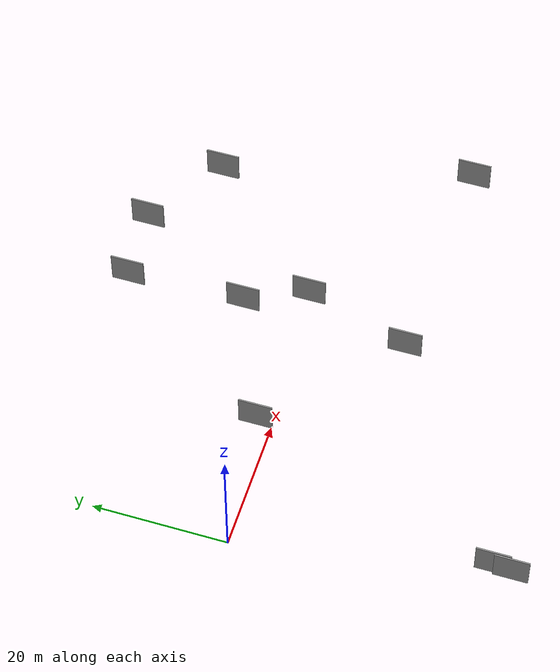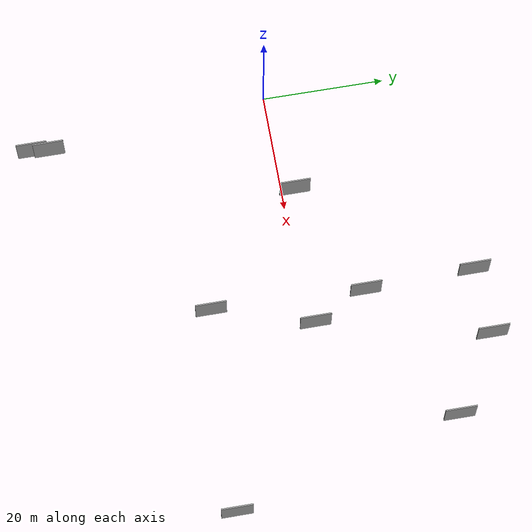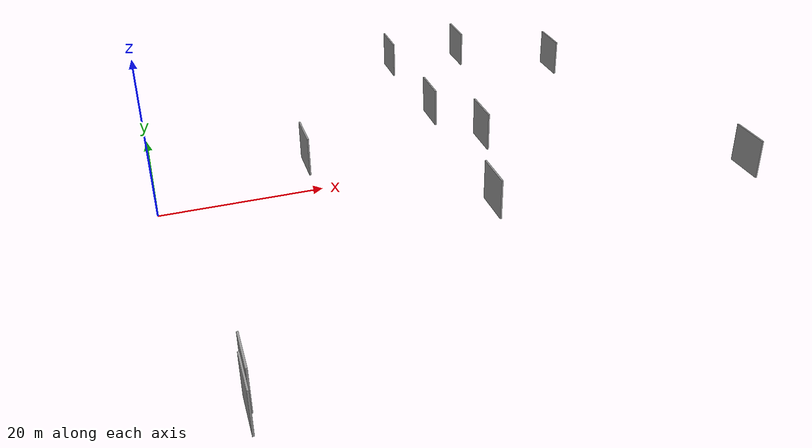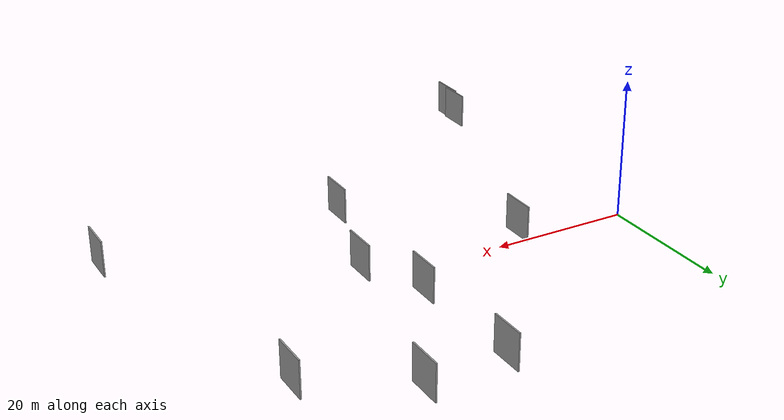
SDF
<sdf version="1.6">
 <world name="default">
  <scene>
   <sky><clouds><speed>12</speed></clouds></sky>
   <ambient>0.4 0.4 0.4 1</ambient>
   <background>0.7 0.7 0.7 1</background>
   <shadows>1</shadows>
  </scene>
  <gravity>0 0 -9.8066</gravity>
  <magnetic_field>6e-06 2.3e-05 -4.2e-05</magnetic_field>
  <physics default="0" name="default_physics" type="ode">
   <ode>
    <solver>
     <type>quick</type>
     <iters>10</iters>
     <sor>1.0</sor>
     <use_dynamic_moi_rescaling>0</use_dynamic_moi_rescaling>
    </solver>
    <constraints>
     <cfm>0</cfm>
     <erp>0.2</erp>
     <contact_max_correcting_vel>100</contact_max_correcting_vel>
     <contact_surface_layer>0.001</contact_surface_layer>
    </constraints>
   </ode>
   <max_step_size>0.004</max_step_size>
   <real_time_factor>1</real_time_factor>
   <real_time_update_rate>250</real_time_update_rate>
  </physics>
  <light name="sun" type="directional">
   <pose>0 0 10 0 0 0</pose>
   <diffuse>0.8 0.8 0.8 1</diffuse>
   <specular>0.2 0.2 0.2 1</specular>
   <attenuation>
    <range>1000</range>
    <constant>0.9</constant>
    <linear>0.01</linear>
    <quadratic>0.001</quadratic>
   </attenuation>
   <direction>-0.5 0.1 -0.9</direction>
  </light>
  <model name="grey_wall_1">
   <static>1</static>
   <pose>69.9967 -16.2536 2.5 0.000000 0.000000 1.570796</pose>
   <link name="link">
    <pose>0 0 2.50 0 0 0</pose>
    <collision name="collision"><geometry><box><size>5.00 0.2 5.00</size></box></geometry></collision>
    <visual name="visual">
     <cast_shadows>0</cast_shadows>
     <geometry><box><size>5.00 0.2 5.00</size></box></geometry>
     <material>
      <script>
       <uri>model://grey_wall/materials/scripts</uri>
       <uri>model://grey_wall/materials/textures</uri>
       <name>vrc/grey_wall</name>
      </script>
     </material>
    </visual>
   </link>
  </model>
  <model name="grey_wall_2">
   <static>1</static>
   <pose>37.0818 27.5900 2.5 0.000000 0.000000 1.570796</pose>
   <link name="link">
    <pose>0 0 2.50 0 0 0</pose>
    <collision name="collision"><geometry><box><size>5.00 0.2 5.00</size></box></geometry></collision>
    <visual name="visual">
     <cast_shadows>0</cast_shadows>
     <geometry><box><size>5.00 0.2 5.00</size></box></geometry>
     <material>
      <script>
       <uri>model://grey_wall/materials/scripts</uri>
       <uri>model://grey_wall/materials/textures</uri>
       <name>vrc/grey_wall</name>
      </script>
     </material>
    </visual>
   </link>
  </model>
  <model name="grey_wall_3">
   <static>1</static>
   <pose>41.6607 1.1178 2.5 0.000000 0.000000 1.570796</pose>
   <link name="link">
    <pose>0 0 2.50 0 0 0</pose>
    <collision name="collision"><geometry><box><size>5.00 0.2 5.00</size></box></geometry></collision>
    <visual name="visual">
     <cast_shadows>0</cast_shadows>
     <geometry><box><size>5.00 0.2 5.00</size></box></geometry>
     <material>
      <script>
       <uri>model://grey_wall/materials/scripts</uri>
       <uri>model://grey_wall/materials/textures</uri>
       <name>vrc/grey_wall</name>
      </script>
     </material>
    </visual>
   </link>
  </model>
  <model name="grey_wall_4">
   <static>1</static>
   <pose>4.7636 -38.9554 2.5 0.000000 0.000000 1.570796</pose>
   <link name="link">
    <pose>0 0 2.50 0 0 0</pose>
    <collision name="collision"><geometry><box><size>5.00 0.2 5.00</size></box></geometry></collision>
    <visual name="visual">
     <cast_shadows>0</cast_shadows>
     <geometry><box><size>5.00 0.2 5.00</size></box></geometry>
     <material>
      <script>
       <uri>model://grey_wall/materials/scripts</uri>
       <uri>model://grey_wall/materials/textures</uri>
       <name>vrc/grey_wall</name>
      </script>
     </material>
    </visual>
   </link>
  </model>
  <model name="grey_wall_5">
   <static>1</static>
   <pose>48.1427 28.3275 2.5 0.000000 0.000000 1.570796</pose>
   <link name="link">
    <pose>0 0 2.50 0 0 0</pose>
    <collision name="collision"><geometry><box><size>5.00 0.2 5.00</size></box></geometry></collision>
    <visual name="visual">
     <cast_shadows>0</cast_shadows>
     <geometry><box><size>5.00 0.2 5.00</size></box></geometry>
     <material>
      <script>
       <uri>model://grey_wall/materials/scripts</uri>
       <uri>model://grey_wall/materials/textures</uri>
       <name>vrc/grey_wall</name>
      </script>
     </material>
    </visual>
   </link>
  </model>
  <model name="grey_wall_6">
   <static>1</static>
   <pose>60.4292 20.5551 2.5 0.000000 0.000000 1.570796</pose>
   <link name="link">
    <pose>0 0 2.50 0 0 0</pose>
    <collision name="collision"><geometry><box><size>5.00 0.2 5.00</size></box></geometry></collision>
    <visual name="visual">
     <cast_shadows>0</cast_shadows>
     <geometry><box><size>5.00 0.2 5.00</size></box></geometry>
     <material>
      <script>
       <uri>model://grey_wall/materials/scripts</uri>
       <uri>model://grey_wall/materials/textures</uri>
       <name>vrc/grey_wall</name>
      </script>
     </material>
    </visual>
   </link>
  </model>
  <model name="grey_wall_7">
   <static>1</static>
   <pose>18.4955 1.8989 2.5 0.000000 0.000000 1.570796</pose>
   <link name="link">
    <pose>0 0 2.50 0 0 0</pose>
    <collision name="collision"><geometry><box><size>5.00 0.2 5.00</size></box></geometry></collision>
    <visual name="visual">
     <cast_shadows>0</cast_shadows>
     <geometry><box><size>5.00 0.2 5.00</size></box></geometry>
     <material>
      <script>
       <uri>model://grey_wall/materials/scripts</uri>
       <uri>model://grey_wall/materials/textures</uri>
       <name>vrc/grey_wall</name>
      </script>
     </material>
    </visual>
   </link>
  </model>
  <model name="grey_wall_8">
   <static>1</static>
   <pose>37.5859 9.9591 2.5 0.000000 0.000000 1.570796</pose>
   <link name="link">
    <pose>0 0 2.50 0 0 0</pose>
    <collision name="collision"><geometry><box><size>5.00 0.2 5.00</size></box></geometry></collision>
    <visual name="visual">
     <cast_shadows>0</cast_shadows>
     <geometry><box><size>5.00 0.2 5.00</size></box></geometry>
     <material>
      <script>
       <uri>model://grey_wall/materials/scripts</uri>
       <uri>model://grey_wall/materials/textures</uri>
       <name>vrc/grey_wall</name>
      </script>
     </material>
    </visual>
   </link>
  </model>
  <model name="grey_wall_9">
   <static>1</static>
   <pose>36.8180 -14.8433 2.5 0.000000 0.000000 1.570796</pose>
   <link name="link">
    <pose>0 0 2.50 0 0 0</pose>
    <collision name="collision"><geometry><box><size>5.00 0.2 5.00</size></box></geometry></collision>
    <visual name="visual">
     <cast_shadows>0</cast_shadows>
     <geometry><box><size>5.00 0.2 5.00</size></box></geometry>
     <material>
      <script>
       <uri>model://grey_wall/materials/scripts</uri>
       <uri>model://grey_wall/materials/textures</uri>
       <name>vrc/grey_wall</name>
      </script>
     </material>
    </visual>
   </link>
  </model>
  <model name="grey_wall_10">
   <static>1</static>
   <pose>5.0713 -36.2994 2.5 0.000000 0.000000 1.570796</pose>
   <link name="link">
    <pose>0 0 2.50 0 0 0</pose>
    <collision name="collision"><geometry><box><size>5.00 0.2 5.00</size></box></geometry></collision>
    <visual name="visual">
     <cast_shadows>0</cast_shadows>
     <geometry><box><size>5.00 0.2 5.00</size></box></geometry>
     <material>
      <script>
       <uri>model://grey_wall/materials/scripts</uri>
       <uri>model://grey_wall/materials/textures</uri>
       <name>vrc/grey_wall</name>
      </script>
     </material>
    </visual>
   </link>
  </model>
 </world>
</sdf>
